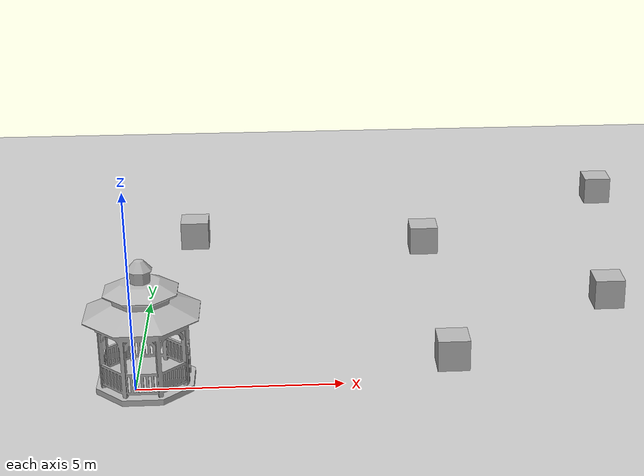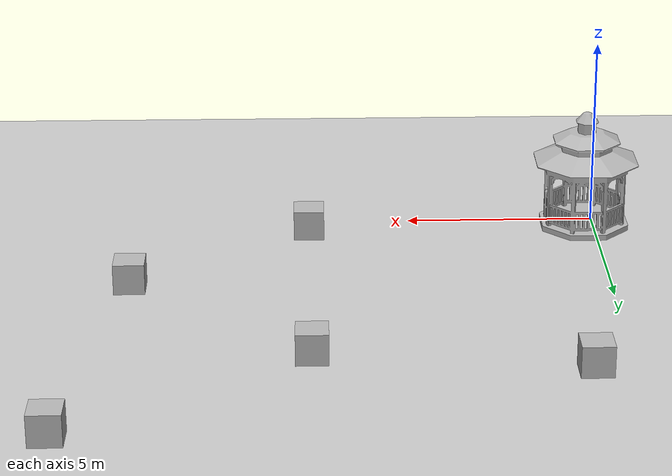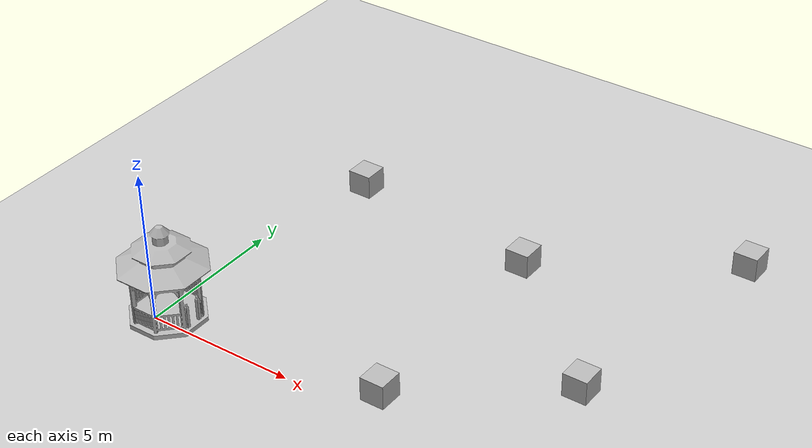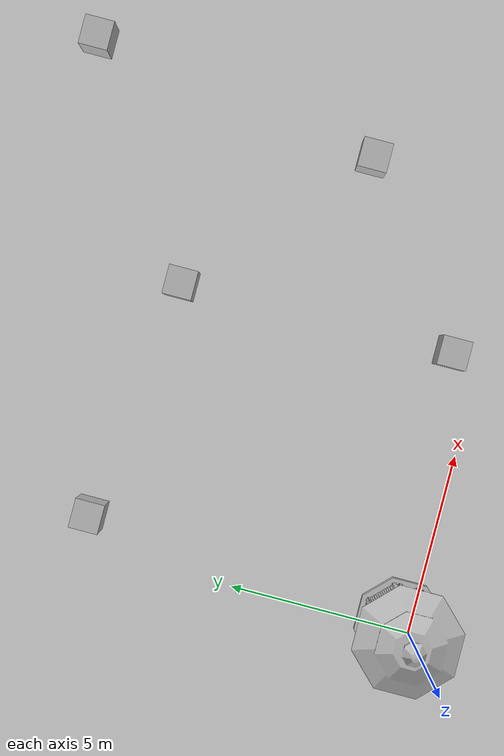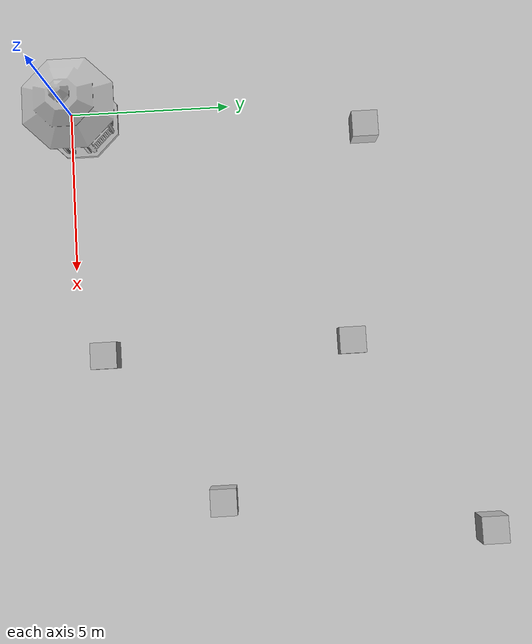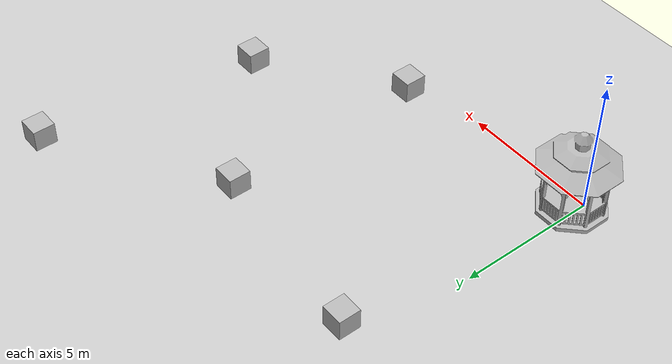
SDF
<sdf version="1.6">
 <world name="base_world">
  <physics name="default_physics" default="0" type="ode">
   <max_step_size>0.001</max_step_size>
   <real_time_factor>1</real_time_factor>
   <real_time_update_rate>1000</real_time_update_rate>
  </physics>
  <light name="sun" type="directional">
   <pose>0 0 10 0 -0 0</pose>
   <diffuse>0.8 0.8 0.8 1</diffuse>
   <specular>0.1 0.1 0.1 1</specular>
   <attenuation>
    <range>1000</range>
    <constant>0.9</constant>
    <linear>0.01</linear>
    <quadratic>0.001</quadratic>
   </attenuation>
   <direction>-0.5 0.5 -1</direction>
  </light>
  <model name="ground_plane">
   <static>1</static>
   <link name="link">
    <collision name="collision">
     <geometry><plane><normal>0 0 1</normal><size>100 100</size></plane></geometry>
     <surface><friction><ode><mu>100</mu><mu2>50</mu2></ode></friction></surface>
    </collision>
    <visual name="visual">
     <cast_shadows>0</cast_shadows>
     <geometry><plane><normal>0 0 1</normal><size>100 100</size></plane></geometry>
     <material>
      <script><uri>file://media/materials/scripts/gazebo.material</uri><name>Gazebo/Grey</name></script>
     </material>
    </visual>
   </link>
  </model>
  <gravity>0 0 -9.81</gravity>
  <magnetic_field>6e-06 2.3e-05 -4.2e-05</magnetic_field>
  <atmosphere type="adiabatic"/>
  <scene><ambient>0.4 0.4 0.4 1</ambient><background>0.7 0.7 0.7 1</background><shadows>1</shadows></scene>
  <spherical_coordinates>
   <surface_model>EARTH_WGS84</surface_model>
   <latitude_deg>0</latitude_deg>
   <longitude_deg>0</longitude_deg>
   <elevation>0</elevation>
   <heading_deg>0</heading_deg>
  </spherical_coordinates>
  <model name="gazebo">
   <static>1</static>
   <link name="link">
    <collision name="collision">
     <geometry><mesh><scale>1 1 1</scale><uri>model://gazebo/meshes/gazebo.dae</uri></mesh></geometry>
    </collision>
    <visual name="visual">
     <geometry><mesh><scale>1 1 1</scale><uri>model://gazebo/meshes/gazebo.dae</uri></mesh></geometry>
    </visual>
   </link>
   <pose>0.24319 0.336802 0 0 -0 0</pose>
  </model>
  <model name="number1_clone_0">
   <pose>12.2665 4.25618 0.4 0 -0 0</pose>
   <static>1</static>
   <link name="link">
    <visual name="visual">
     <geometry><mesh><uri>model://number1/meshes/number.dae</uri><scale>1 1 1</scale></mesh></geometry>
     <material>
      <script>
       <uri>model://number1/materials/scripts</uri>
       <uri>model://number1/materials/textures</uri>
       <name>Number/One</name>
      </script>
     </material>
    </visual>
   </link>
  </model>
  <model name="number1_clone_0_clone">
   <pose>13.5154 12.2596 0.4 0 -0 0</pose>
   <static>1</static>
   <link name="link">
    <visual name="visual">
     <geometry><mesh><uri>model://number1/meshes/number.dae</uri><scale>1 1 1</scale></mesh></geometry>
     <material>
      <script>
       <uri>model://number1/materials/scripts</uri>
       <uri>model://number1/materials/textures</uri>
       <name>Number/One</name>
      </script>
     </material>
    </visual>
   </link>
  </model>
  <model name="number1_clone_0_clone_0">
   <pose>7.66227 8.40941 0.4 0 -0 0</pose>
   <static>1</static>
   <link name="link">
    <visual name="visual">
     <geometry><mesh><uri>model://number1/meshes/number.dae</uri><scale>1 1 1</scale></mesh></geometry>
     <material>
      <script>
       <uri>model://number1/materials/scripts</uri>
       <uri>model://number1/materials/textures</uri>
       <name>Number/One</name>
      </script>
     </material>
    </visual>
   </link>
  </model>
  <model name="number1_clone_0_clone_2">
   <pose>1.013 9.22136 0.4 0 -0 0</pose>
   <static>1</static>
   <link name="link">
    <visual name="visual">
     <geometry><mesh><uri>model://number1/meshes/number.dae</uri><scale>1 1 1</scale></mesh></geometry>
     <material>
      <script>
       <uri>model://number1/materials/scripts</uri>
       <uri>model://number1/materials/textures</uri>
       <name>Number/One</name>
      </script>
     </material>
    </visual>
   </link>
  </model>
  <model name="number1_clone_0_clone_3">
   <pose>7.71094 0.870862 0.4 0 -0 0</pose>
   <static>1</static>
   <link name="link">
    <visual name="visual">
     <geometry><mesh><uri>model://number1/meshes/number.dae</uri><scale>1 1 1</scale></mesh></geometry>
     <material>
      <script>
       <uri>model://number1/materials/scripts</uri>
       <uri>model://number1/materials/textures</uri>
       <name>Number/One</name>
      </script>
     </material>
    </visual>
   </link>
  </model>
 </world>
</sdf>
